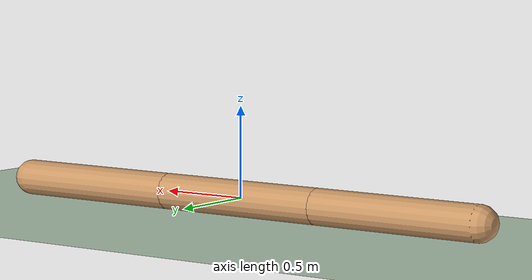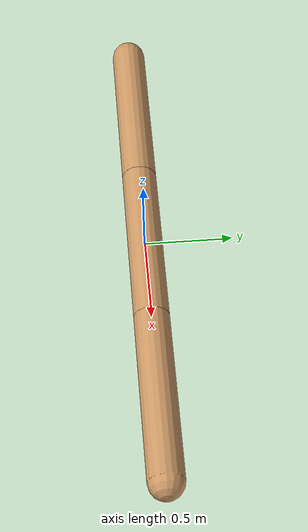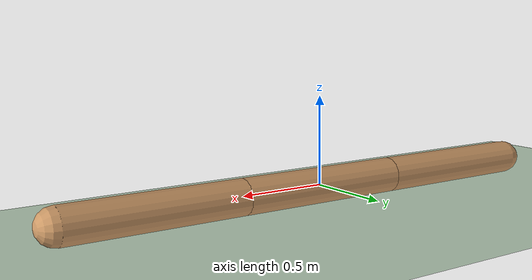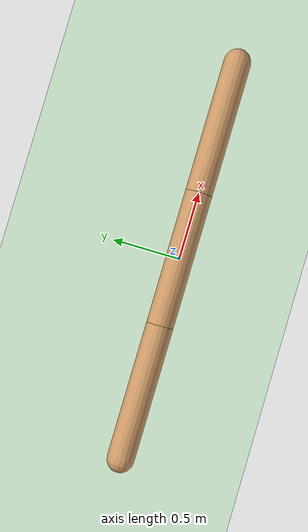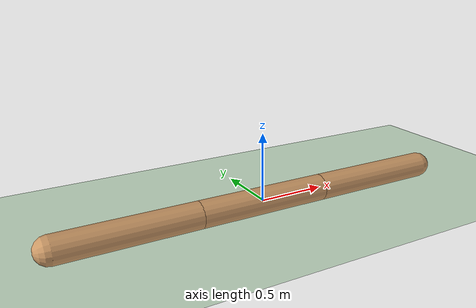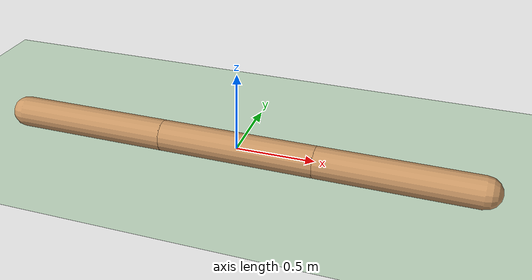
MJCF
<mujoco model="swimmer">
  <compiler angle="radian" coordinate="local" inertiafromgeom="true"/>
  <option collision="predefined" density="4000" integrator="RK4" timestep="0.01" viscosity="0.1"/>
  <default>
    <geom conaffinity="1" condim="1" contype="1" material="geom" rgba="0.8 0.6 .4 1"/>
    <joint armature='0.1'  />
  </default>
  <asset>
    <texture builtin="gradient" height="100" rgb1="1 1 1" rgb2="0 0 0" type="skybox" width="100"/>
    <texture builtin="flat" height="1278" mark="cross" markrgb="1 1 1" name="texgeom" random="0.01" rgb1="0.8 0.6 0.4" rgb2="0.8 0.6 0.4" type="cube" width="127"/>
    <texture builtin="checker" height="100" name="texplane" rgb1="0 0 0" rgb2="0.8 0.8 0.8" type="2d" width="100"/>
    <material name="MatPlane" reflectance="0.5" shininess="1" specular="1" texrepeat="30 30" texture="texplane"/>
    <material name="geom" texture="texgeom" texuniform="true"/>
  </asset>
  <worldbody>
    <light cutoff="100" diffuse="1 1 1" dir="-0 0 -1.3" directional="true" exponent="1" pos="0 0 1.3" specular=".1 .1 .1"/>
    <geom conaffinity="1" condim="3" material="MatPlane" name="floor" pos="0 0 -0.1" rgba="0.8 0.9 0.8 1" size="40 40 0.1" type="plane"/>
    <!--  ================= SWIMMER ================= /-->
    <body name="torso" pos="0 0 0">

      <camera name="track" mode="trackcom" pos="0 -3 3" xyaxes="1 0 0 0 1 1"/>
      <geom density="1000" fromto="1.5 0 0 0.5 0 0" size="0.1" type="capsule"/>
      <joint axis="1 0 0" name="slider1" pos="0 0 0" type="slide"/>
      <joint axis="0 1 0" name="slider2" pos="0 0 0" type="slide"/>
      <joint axis="0 0 1" name="rot" pos="0 0 0" type="hinge"/>
      <site name="root1" pos="1.5 0 0" rgba="0 0 1 1" size="0.01 0.01 0.01"></site>
      <site name="root2" pos="0.5 0 0" rgba="0 0 1 1" size="0.01 0.01 0.01"></site>

      <body name="mid" pos="0.5 0 0">
        <geom density="1000" fromto="0 0 0 -1 0 0" size="0.1" type="capsule"/>
        <joint axis="0 0 1" limited="true" name="rot2" pos="0 0 0" range="-1.745 1.745" type="hinge"/>

        <body name="back" pos="-1 0 0">
          <geom density="1000" fromto="0 0 0 -1 0 0" size="0.1" type="capsule"/>
          <joint axis="0 0 1" limited="true" name="rot3" pos="0 0 0" range="-1.745 1.745" type="hinge"/>
        </body>
      </body>
    </body>
  </worldbody>
  <actuator>
    <position ctrllimited="true" ctrlrange="-1.745 1.745" forcerange="-150 150" joint="rot2" kp="150" name="pos_rot2" ></position>
    <position ctrllimited="true" ctrlrange="-1.745 1.745" forcerange="-150 150" joint="rot3" kp="150" name="pos_rot3" ></position>
  </actuator>
</mujoco>
